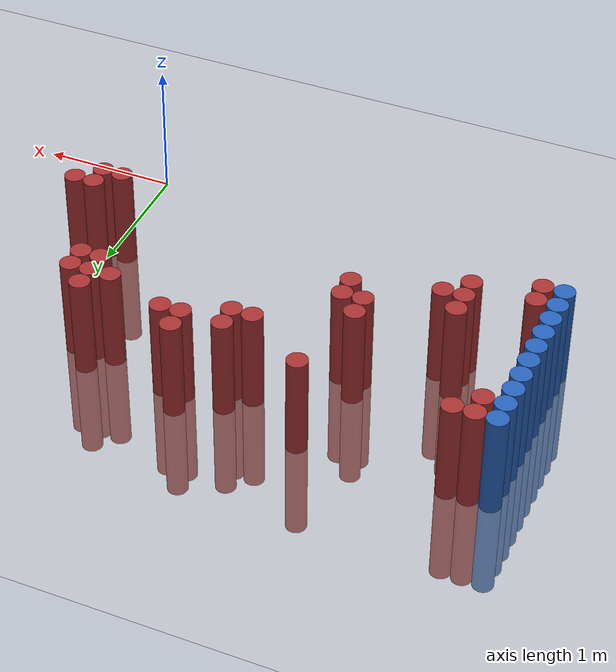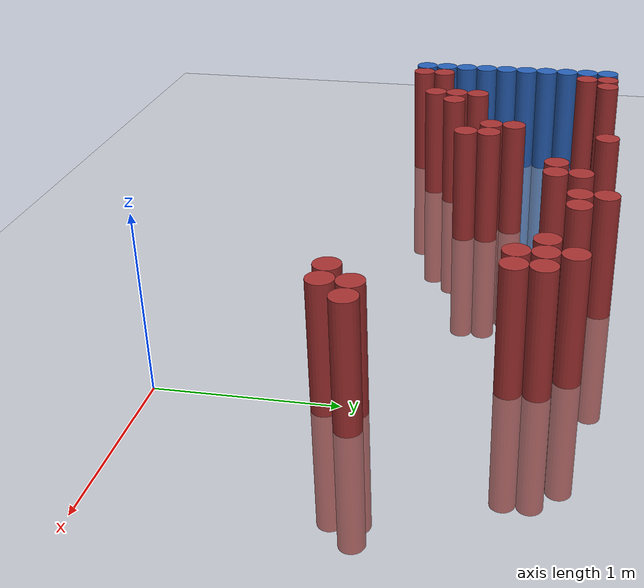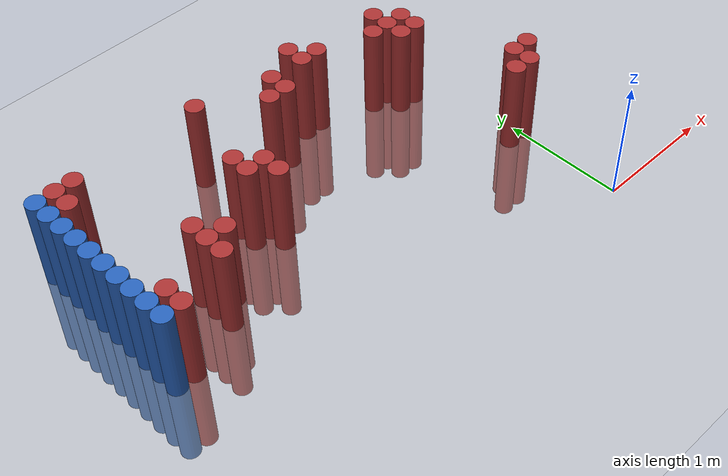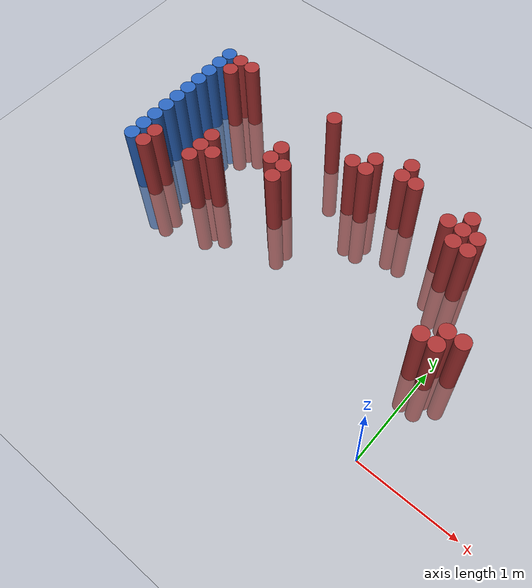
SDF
<sdf version="1.6">
 <world name="default">
  <model name="ground_plane">
   <static>1</static>
   <link name="link">
    <collision name="collision">
     <geometry><plane><normal>0 0 1</normal><size>100 100</size></plane></geometry>
     <surface><friction><ode><mu>100</mu><mu2>50</mu2></ode></friction></surface>
    </collision>
    <visual name="visual">
     <cast_shadows>0</cast_shadows>
     <geometry><plane><normal>0 0 1</normal><size>100 100</size></plane></geometry>
     <material>
      <script><uri>file://media/materials/scripts/gazebo.material</uri><name>Gazebo/Grey</name></script>
     </material>
    </visual>
   </link>
  </model>
  <model name="unit_cylinder_127">
   <static>1</static>
   <pose>-3.425000 0.925000 0.000000 0.000000 0.000000 0.000000</pose>
   <link name="link">
    <inertial>
     <mass>1</mass>
     <inertia><ixx>0.145833</ixx><ixy>0</ixy><ixz>0</ixz><iyy>0.145833</iyy><iyz>0</iyz><izz>0.125</izz></inertia>
    </inertial>
    <collision name="collision">
     <geometry><cylinder><radius>0.075000</radius><length>1.5</length></cylinder></geometry>
    </collision>
    <visual name="visual">
     <geometry><cylinder><radius>0.075000</radius><length>1.5</length></cylinder></geometry>
     <material>
      <ambient>0.152000 0.379000 0.720000 1</ambient>
      <diffuse>0.152000 0.379000 0.720000 1</diffuse>
     </material>
     <material>
      <script><name>Gazebo/Grey</name><uri>file://media/materials/scripts/gazebo.material</uri></script>
     </material>
    </visual>
   </link>
  </model>
  <model name="unit_cylinder_129">
   <static>1</static>
   <pose>-3.425000 1.075000 0.000000 0.000000 0.000000 0.000000</pose>
   <link name="link">
    <inertial>
     <mass>1</mass>
     <inertia><ixx>0.145833</ixx><ixy>0</ixy><ixz>0</ixz><iyy>0.145833</iyy><iyz>0</iyz><izz>0.125</izz></inertia>
    </inertial>
    <collision name="collision">
     <geometry><cylinder><radius>0.075000</radius><length>1.5</length></cylinder></geometry>
    </collision>
    <visual name="visual">
     <geometry><cylinder><radius>0.075000</radius><length>1.5</length></cylinder></geometry>
     <material>
      <ambient>0.152000 0.379000 0.720000 1</ambient>
      <diffuse>0.152000 0.379000 0.720000 1</diffuse>
     </material>
     <material>
      <script><name>Gazebo/Grey</name><uri>file://media/materials/scripts/gazebo.material</uri></script>
     </material>
    </visual>
   </link>
  </model>
  <model name="unit_cylinder_131">
   <static>1</static>
   <pose>-3.425000 1.225000 0.000000 0.000000 0.000000 0.000000</pose>
   <link name="link">
    <inertial>
     <mass>1</mass>
     <inertia><ixx>0.145833</ixx><ixy>0</ixy><ixz>0</ixz><iyy>0.145833</iyy><iyz>0</iyz><izz>0.125</izz></inertia>
    </inertial>
    <collision name="collision">
     <geometry><cylinder><radius>0.075000</radius><length>1.5</length></cylinder></geometry>
    </collision>
    <visual name="visual">
     <geometry><cylinder><radius>0.075000</radius><length>1.5</length></cylinder></geometry>
     <material>
      <ambient>0.152000 0.379000 0.720000 1</ambient>
      <diffuse>0.152000 0.379000 0.720000 1</diffuse>
     </material>
     <material>
      <script><name>Gazebo/Grey</name><uri>file://media/materials/scripts/gazebo.material</uri></script>
     </material>
    </visual>
   </link>
  </model>
  <model name="unit_cylinder_133">
   <static>1</static>
   <pose>-3.425000 1.375000 0.000000 0.000000 0.000000 0.000000</pose>
   <link name="link">
    <inertial>
     <mass>1</mass>
     <inertia><ixx>0.145833</ixx><ixy>0</ixy><ixz>0</ixz><iyy>0.145833</iyy><iyz>0</iyz><izz>0.125</izz></inertia>
    </inertial>
    <collision name="collision">
     <geometry><cylinder><radius>0.075000</radius><length>1.5</length></cylinder></geometry>
    </collision>
    <visual name="visual">
     <geometry><cylinder><radius>0.075000</radius><length>1.5</length></cylinder></geometry>
     <material>
      <ambient>0.152000 0.379000 0.720000 1</ambient>
      <diffuse>0.152000 0.379000 0.720000 1</diffuse>
     </material>
     <material>
      <script><name>Gazebo/Grey</name><uri>file://media/materials/scripts/gazebo.material</uri></script>
     </material>
    </visual>
   </link>
  </model>
  <model name="unit_cylinder_135">
   <static>1</static>
   <pose>-3.425000 1.525000 0.000000 0.000000 0.000000 0.000000</pose>
   <link name="link">
    <inertial>
     <mass>1</mass>
     <inertia><ixx>0.145833</ixx><ixy>0</ixy><ixz>0</ixz><iyy>0.145833</iyy><iyz>0</iyz><izz>0.125</izz></inertia>
    </inertial>
    <collision name="collision">
     <geometry><cylinder><radius>0.075000</radius><length>1.5</length></cylinder></geometry>
    </collision>
    <visual name="visual">
     <geometry><cylinder><radius>0.075000</radius><length>1.5</length></cylinder></geometry>
     <material>
      <ambient>0.152000 0.379000 0.720000 1</ambient>
      <diffuse>0.152000 0.379000 0.720000 1</diffuse>
     </material>
     <material>
      <script><name>Gazebo/Grey</name><uri>file://media/materials/scripts/gazebo.material</uri></script>
     </material>
    </visual>
   </link>
  </model>
  <model name="unit_cylinder_137">
   <static>1</static>
   <pose>-3.425000 1.675000 0.000000 0.000000 0.000000 0.000000</pose>
   <link name="link">
    <inertial>
     <mass>1</mass>
     <inertia><ixx>0.145833</ixx><ixy>0</ixy><ixz>0</ixz><iyy>0.145833</iyy><iyz>0</iyz><izz>0.125</izz></inertia>
    </inertial>
    <collision name="collision">
     <geometry><cylinder><radius>0.075000</radius><length>1.5</length></cylinder></geometry>
    </collision>
    <visual name="visual">
     <geometry><cylinder><radius>0.075000</radius><length>1.5</length></cylinder></geometry>
     <material>
      <ambient>0.152000 0.379000 0.720000 1</ambient>
      <diffuse>0.152000 0.379000 0.720000 1</diffuse>
     </material>
     <material>
      <script><name>Gazebo/Grey</name><uri>file://media/materials/scripts/gazebo.material</uri></script>
     </material>
    </visual>
   </link>
  </model>
  <model name="unit_cylinder_139">
   <static>1</static>
   <pose>-3.425000 1.825000 0.000000 0.000000 0.000000 0.000000</pose>
   <link name="link">
    <inertial>
     <mass>1</mass>
     <inertia><ixx>0.145833</ixx><ixy>0</ixy><ixz>0</ixz><iyy>0.145833</iyy><iyz>0</iyz><izz>0.125</izz></inertia>
    </inertial>
    <collision name="collision">
     <geometry><cylinder><radius>0.075000</radius><length>1.5</length></cylinder></geometry>
    </collision>
    <visual name="visual">
     <geometry><cylinder><radius>0.075000</radius><length>1.5</length></cylinder></geometry>
     <material>
      <ambient>0.152000 0.379000 0.720000 1</ambient>
      <diffuse>0.152000 0.379000 0.720000 1</diffuse>
     </material>
     <material>
      <script><name>Gazebo/Grey</name><uri>file://media/materials/scripts/gazebo.material</uri></script>
     </material>
    </visual>
   </link>
  </model>
  <model name="unit_cylinder_141">
   <static>1</static>
   <pose>-3.425000 1.975000 0.000000 0.000000 0.000000 0.000000</pose>
   <link name="link">
    <inertial>
     <mass>1</mass>
     <inertia><ixx>0.145833</ixx><ixy>0</ixy><ixz>0</ixz><iyy>0.145833</iyy><iyz>0</iyz><izz>0.125</izz></inertia>
    </inertial>
    <collision name="collision">
     <geometry><cylinder><radius>0.075000</radius><length>1.5</length></cylinder></geometry>
    </collision>
    <visual name="visual">
     <geometry><cylinder><radius>0.075000</radius><length>1.5</length></cylinder></geometry>
     <material>
      <ambient>0.152000 0.379000 0.720000 1</ambient>
      <diffuse>0.152000 0.379000 0.720000 1</diffuse>
     </material>
     <material>
      <script><name>Gazebo/Grey</name><uri>file://media/materials/scripts/gazebo.material</uri></script>
     </material>
    </visual>
   </link>
  </model>
  <model name="unit_cylinder_143">
   <static>1</static>
   <pose>-3.425000 2.125000 0.000000 0.000000 0.000000 0.000000</pose>
   <link name="link">
    <inertial>
     <mass>1</mass>
     <inertia><ixx>0.145833</ixx><ixy>0</ixy><ixz>0</ixz><iyy>0.145833</iyy><iyz>0</iyz><izz>0.125</izz></inertia>
    </inertial>
    <collision name="collision">
     <geometry><cylinder><radius>0.075000</radius><length>1.5</length></cylinder></geometry>
    </collision>
    <visual name="visual">
     <geometry><cylinder><radius>0.075000</radius><length>1.5</length></cylinder></geometry>
     <material>
      <ambient>0.152000 0.379000 0.720000 1</ambient>
      <diffuse>0.152000 0.379000 0.720000 1</diffuse>
     </material>
     <material>
      <script><name>Gazebo/Grey</name><uri>file://media/materials/scripts/gazebo.material</uri></script>
     </material>
    </visual>
   </link>
  </model>
  <model name="unit_cylinder_145">
   <static>1</static>
   <pose>-3.425000 2.275000 0.000000 0.000000 0.000000 0.000000</pose>
   <link name="link">
    <inertial>
     <mass>1</mass>
     <inertia><ixx>0.145833</ixx><ixy>0</ixy><ixz>0</ixz><iyy>0.145833</iyy><iyz>0</iyz><izz>0.125</izz></inertia>
    </inertial>
    <collision name="collision">
     <geometry><cylinder><radius>0.075000</radius><length>1.5</length></cylinder></geometry>
    </collision>
    <visual name="visual">
     <geometry><cylinder><radius>0.075000</radius><length>1.5</length></cylinder></geometry>
     <material>
      <ambient>0.152000 0.379000 0.720000 1</ambient>
      <diffuse>0.152000 0.379000 0.720000 1</diffuse>
     </material>
     <material>
      <script><name>Gazebo/Grey</name><uri>file://media/materials/scripts/gazebo.material</uri></script>
     </material>
    </visual>
   </link>
  </model>
  <model name="unit_cylinder_227">
   <static>1</static>
   <pose>-3.425000 0.925000 0.000000 0.000000 0.000000 0.000000</pose>
   <link name="link">
    <inertial>
     <mass>1</mass>
     <inertia><ixx>0.145833</ixx><ixy>0</ixy><ixz>0</ixz><iyy>0.145833</iyy><iyz>0</iyz><izz>0.125</izz></inertia>
    </inertial>
    <collision name="collision">
     <geometry><cylinder><radius>0.075000</radius><length>1.5</length></cylinder></geometry>
    </collision>
    <visual name="visual">
     <geometry><cylinder><radius>0.075000</radius><length>1.5</length></cylinder></geometry>
     <material>
      <ambient>0.152000 0.379000 0.720000 1</ambient>
      <diffuse>0.152000 0.379000 0.720000 1</diffuse>
     </material>
     <material>
      <script><name>Gazebo/Grey</name><uri>file://media/materials/scripts/gazebo.material</uri></script>
     </material>
    </visual>
   </link>
  </model>
  <model name="unit_cylinder_228">
   <static>1</static>
   <pose>-3.425000 1.075000 0.000000 0.000000 0.000000 0.000000</pose>
   <link name="link">
    <inertial>
     <mass>1</mass>
     <inertia><ixx>0.145833</ixx><ixy>0</ixy><ixz>0</ixz><iyy>0.145833</iyy><iyz>0</iyz><izz>0.125</izz></inertia>
    </inertial>
    <collision name="collision">
     <geometry><cylinder><radius>0.075000</radius><length>1.5</length></cylinder></geometry>
    </collision>
    <visual name="visual">
     <geometry><cylinder><radius>0.075000</radius><length>1.5</length></cylinder></geometry>
     <material>
      <ambient>0.152000 0.379000 0.720000 1</ambient>
      <diffuse>0.152000 0.379000 0.720000 1</diffuse>
     </material>
     <material>
      <script><name>Gazebo/Grey</name><uri>file://media/materials/scripts/gazebo.material</uri></script>
     </material>
    </visual>
   </link>
  </model>
  <model name="unit_cylinder_229">
   <static>1</static>
   <pose>-3.425000 1.225000 0.000000 0.000000 0.000000 0.000000</pose>
   <link name="link">
    <inertial>
     <mass>1</mass>
     <inertia><ixx>0.145833</ixx><ixy>0</ixy><ixz>0</ixz><iyy>0.145833</iyy><iyz>0</iyz><izz>0.125</izz></inertia>
    </inertial>
    <collision name="collision">
     <geometry><cylinder><radius>0.075000</radius><length>1.5</length></cylinder></geometry>
    </collision>
    <visual name="visual">
     <geometry><cylinder><radius>0.075000</radius><length>1.5</length></cylinder></geometry>
     <material>
      <ambient>0.152000 0.379000 0.720000 1</ambient>
      <diffuse>0.152000 0.379000 0.720000 1</diffuse>
     </material>
     <material>
      <script><name>Gazebo/Grey</name><uri>file://media/materials/scripts/gazebo.material</uri></script>
     </material>
    </visual>
   </link>
  </model>
  <model name="unit_cylinder_230">
   <static>1</static>
   <pose>-3.425000 1.375000 0.000000 0.000000 0.000000 0.000000</pose>
   <link name="link">
    <inertial>
     <mass>1</mass>
     <inertia><ixx>0.145833</ixx><ixy>0</ixy><ixz>0</ixz><iyy>0.145833</iyy><iyz>0</iyz><izz>0.125</izz></inertia>
    </inertial>
    <collision name="collision">
     <geometry><cylinder><radius>0.075000</radius><length>1.5</length></cylinder></geometry>
    </collision>
    <visual name="visual">
     <geometry><cylinder><radius>0.075000</radius><length>1.5</length></cylinder></geometry>
     <material>
      <ambient>0.152000 0.379000 0.720000 1</ambient>
      <diffuse>0.152000 0.379000 0.720000 1</diffuse>
     </material>
     <material>
      <script><name>Gazebo/Grey</name><uri>file://media/materials/scripts/gazebo.material</uri></script>
     </material>
    </visual>
   </link>
  </model>
  <model name="unit_cylinder_231">
   <static>1</static>
   <pose>-3.425000 1.525000 0.000000 0.000000 0.000000 0.000000</pose>
   <link name="link">
    <inertial>
     <mass>1</mass>
     <inertia><ixx>0.145833</ixx><ixy>0</ixy><ixz>0</ixz><iyy>0.145833</iyy><iyz>0</iyz><izz>0.125</izz></inertia>
    </inertial>
    <collision name="collision">
     <geometry><cylinder><radius>0.075000</radius><length>1.5</length></cylinder></geometry>
    </collision>
    <visual name="visual">
     <geometry><cylinder><radius>0.075000</radius><length>1.5</length></cylinder></geometry>
     <material>
      <ambient>0.152000 0.379000 0.720000 1</ambient>
      <diffuse>0.152000 0.379000 0.720000 1</diffuse>
     </material>
     <material>
      <script><name>Gazebo/Grey</name><uri>file://media/materials/scripts/gazebo.material</uri></script>
     </material>
    </visual>
   </link>
  </model>
  <model name="unit_cylinder_232">
   <static>1</static>
   <pose>-3.425000 1.675000 0.000000 0.000000 0.000000 0.000000</pose>
   <link name="link">
    <inertial>
     <mass>1</mass>
     <inertia><ixx>0.145833</ixx><ixy>0</ixy><ixz>0</ixz><iyy>0.145833</iyy><iyz>0</iyz><izz>0.125</izz></inertia>
    </inertial>
    <collision name="collision">
     <geometry><cylinder><radius>0.075000</radius><length>1.5</length></cylinder></geometry>
    </collision>
    <visual name="visual">
     <geometry><cylinder><radius>0.075000</radius><length>1.5</length></cylinder></geometry>
     <material>
      <ambient>0.152000 0.379000 0.720000 1</ambient>
      <diffuse>0.152000 0.379000 0.720000 1</diffuse>
     </material>
     <material>
      <script><name>Gazebo/Grey</name><uri>file://media/materials/scripts/gazebo.material</uri></script>
     </material>
    </visual>
   </link>
  </model>
  <model name="unit_cylinder_233">
   <static>1</static>
   <pose>-3.425000 1.825000 0.000000 0.000000 0.000000 0.000000</pose>
   <link name="link">
    <inertial>
     <mass>1</mass>
     <inertia><ixx>0.145833</ixx><ixy>0</ixy><ixz>0</ixz><iyy>0.145833</iyy><iyz>0</iyz><izz>0.125</izz></inertia>
    </inertial>
    <collision name="collision">
     <geometry><cylinder><radius>0.075000</radius><length>1.5</length></cylinder></geometry>
    </collision>
    <visual name="visual">
     <geometry><cylinder><radius>0.075000</radius><length>1.5</length></cylinder></geometry>
     <material>
      <ambient>0.152000 0.379000 0.720000 1</ambient>
      <diffuse>0.152000 0.379000 0.720000 1</diffuse>
     </material>
     <material>
      <script><name>Gazebo/Grey</name><uri>file://media/materials/scripts/gazebo.material</uri></script>
     </material>
    </visual>
   </link>
  </model>
  <model name="unit_cylinder_234">
   <static>1</static>
   <pose>-3.425000 1.975000 0.000000 0.000000 0.000000 0.000000</pose>
   <link name="link">
    <inertial>
     <mass>1</mass>
     <inertia><ixx>0.145833</ixx><ixy>0</ixy><ixz>0</ixz><iyy>0.145833</iyy><iyz>0</iyz><izz>0.125</izz></inertia>
    </inertial>
    <collision name="collision">
     <geometry><cylinder><radius>0.075000</radius><length>1.5</length></cylinder></geometry>
    </collision>
    <visual name="visual">
     <geometry><cylinder><radius>0.075000</radius><length>1.5</length></cylinder></geometry>
     <material>
      <ambient>0.152000 0.379000 0.720000 1</ambient>
      <diffuse>0.152000 0.379000 0.720000 1</diffuse>
     </material>
     <material>
      <script><name>Gazebo/Grey</name><uri>file://media/materials/scripts/gazebo.material</uri></script>
     </material>
    </visual>
   </link>
  </model>
  <model name="unit_cylinder_235">
   <static>1</static>
   <pose>-3.425000 2.125000 0.000000 0.000000 0.000000 0.000000</pose>
   <link name="link">
    <inertial>
     <mass>1</mass>
     <inertia><ixx>0.145833</ixx><ixy>0</ixy><ixz>0</ixz><iyy>0.145833</iyy><iyz>0</iyz><izz>0.125</izz></inertia>
    </inertial>
    <collision name="collision">
     <geometry><cylinder><radius>0.075000</radius><length>1.5</length></cylinder></geometry>
    </collision>
    <visual name="visual">
     <geometry><cylinder><radius>0.075000</radius><length>1.5</length></cylinder></geometry>
     <material>
      <ambient>0.152000 0.379000 0.720000 1</ambient>
      <diffuse>0.152000 0.379000 0.720000 1</diffuse>
     </material>
     <material>
      <script><name>Gazebo/Grey</name><uri>file://media/materials/scripts/gazebo.material</uri></script>
     </material>
    </visual>
   </link>
  </model>
  <model name="unit_cylinder_236">
   <static>1</static>
   <pose>-3.425000 2.275000 0.000000 0.000000 0.000000 0.000000</pose>
   <link name="link">
    <inertial>
     <mass>1</mass>
     <inertia><ixx>0.145833</ixx><ixy>0</ixy><ixz>0</ixz><iyy>0.145833</iyy><iyz>0</iyz><izz>0.125</izz></inertia>
    </inertial>
    <collision name="collision">
     <geometry><cylinder><radius>0.075000</radius><length>1.5</length></cylinder></geometry>
    </collision>
    <visual name="visual">
     <geometry><cylinder><radius>0.075000</radius><length>1.5</length></cylinder></geometry>
     <material>
      <ambient>0.152000 0.379000 0.720000 1</ambient>
      <diffuse>0.152000 0.379000 0.720000 1</diffuse>
     </material>
     <material>
      <script><name>Gazebo/Grey</name><uri>file://media/materials/scripts/gazebo.material</uri></script>
     </material>
    </visual>
   </link>
  </model>
  <model name="unit_cylinder_271">
   <static>1</static>
   <pose>-3.275000 0.925000 0.000000 0.000000 0.000000 0.000000</pose>
   <link name="link">
    <inertial>
     <mass>1</mass>
     <inertia><ixx>0.145833</ixx><ixy>0</ixy><ixz>0</ixz><iyy>0.145833</iyy><iyz>0</iyz><izz>0.125</izz></inertia>
    </inertial>
    <collision name="collision">
     <geometry><cylinder><radius>0.075000</radius><length>1.5</length></cylinder></geometry>
    </collision>
    <visual name="visual">
     <geometry><cylinder><radius>0.075000</radius><length>1.5</length></cylinder></geometry>
     <material>
      <ambient>0.648000 0.192000 0.192000 1</ambient>
      <diffuse>0.648000 0.192000 0.192000 1</diffuse>
     </material>
     <material>
      <script><name>Gazebo/Grey</name><uri>file://media/materials/scripts/gazebo.material</uri></script>
     </material>
    </visual>
   </link>
  </model>
  <model name="unit_cylinder_272">
   <static>1</static>
   <pose>-3.275000 1.075000 0.000000 0.000000 0.000000 0.000000</pose>
   <link name="link">
    <inertial>
     <mass>1</mass>
     <inertia><ixx>0.145833</ixx><ixy>0</ixy><ixz>0</ixz><iyy>0.145833</iyy><iyz>0</iyz><izz>0.125</izz></inertia>
    </inertial>
    <collision name="collision">
     <geometry><cylinder><radius>0.075000</radius><length>1.5</length></cylinder></geometry>
    </collision>
    <visual name="visual">
     <geometry><cylinder><radius>0.075000</radius><length>1.5</length></cylinder></geometry>
     <material>
      <ambient>0.648000 0.192000 0.192000 1</ambient>
      <diffuse>0.648000 0.192000 0.192000 1</diffuse>
     </material>
     <material>
      <script><name>Gazebo/Grey</name><uri>file://media/materials/scripts/gazebo.material</uri></script>
     </material>
    </visual>
   </link>
  </model>
  <model name="unit_cylinder_273">
   <static>1</static>
   <pose>-3.275000 2.125000 0.000000 0.000000 0.000000 0.000000</pose>
   <link name="link">
    <inertial>
     <mass>1</mass>
     <inertia><ixx>0.145833</ixx><ixy>0</ixy><ixz>0</ixz><iyy>0.145833</iyy><iyz>0</iyz><izz>0.125</izz></inertia>
    </inertial>
    <collision name="collision">
     <geometry><cylinder><radius>0.075000</radius><length>1.5</length></cylinder></geometry>
    </collision>
    <visual name="visual">
     <geometry><cylinder><radius>0.075000</radius><length>1.5</length></cylinder></geometry>
     <material>
      <ambient>0.648000 0.192000 0.192000 1</ambient>
      <diffuse>0.648000 0.192000 0.192000 1</diffuse>
     </material>
     <material>
      <script><name>Gazebo/Grey</name><uri>file://media/materials/scripts/gazebo.material</uri></script>
     </material>
    </visual>
   </link>
  </model>
  <model name="unit_cylinder_274">
   <static>1</static>
   <pose>-3.275000 2.275000 0.000000 0.000000 0.000000 0.000000</pose>
   <link name="link">
    <inertial>
     <mass>1</mass>
     <inertia><ixx>0.145833</ixx><ixy>0</ixy><ixz>0</ixz><iyy>0.145833</iyy><iyz>0</iyz><izz>0.125</izz></inertia>
    </inertial>
    <collision name="collision">
     <geometry><cylinder><radius>0.075000</radius><length>1.5</length></cylinder></geometry>
    </collision>
    <visual name="visual">
     <geometry><cylinder><radius>0.075000</radius><length>1.5</length></cylinder></geometry>
     <material>
      <ambient>0.648000 0.192000 0.192000 1</ambient>
      <diffuse>0.648000 0.192000 0.192000 1</diffuse>
     </material>
     <material>
      <script><name>Gazebo/Grey</name><uri>file://media/materials/scripts/gazebo.material</uri></script>
     </material>
    </visual>
   </link>
  </model>
  <model name="unit_cylinder_286">
   <static>1</static>
   <pose>-3.125000 2.275000 0.000000 0.000000 0.000000 0.000000</pose>
   <link name="link">
    <inertial>
     <mass>1</mass>
     <inertia><ixx>0.145833</ixx><ixy>0</ixy><ixz>0</ixz><iyy>0.145833</iyy><iyz>0</iyz><izz>0.125</izz></inertia>
    </inertial>
    <collision name="collision">
     <geometry><cylinder><radius>0.075000</radius><length>1.5</length></cylinder></geometry>
    </collision>
    <visual name="visual">
     <geometry><cylinder><radius>0.075000</radius><length>1.5</length></cylinder></geometry>
     <material>
      <ambient>0.648000 0.192000 0.192000 1</ambient>
      <diffuse>0.648000 0.192000 0.192000 1</diffuse>
     </material>
     <material>
      <script><name>Gazebo/Grey</name><uri>file://media/materials/scripts/gazebo.material</uri></script>
     </material>
    </visual>
   </link>
  </model>
  <model name="unit_cylinder_302">
   <static>1</static>
   <pose>-2.825000 1.075000 0.000000 0.000000 0.000000 0.000000</pose>
   <link name="link">
    <inertial>
     <mass>1</mass>
     <inertia><ixx>0.145833</ixx><ixy>0</ixy><ixz>0</ixz><iyy>0.145833</iyy><iyz>0</iyz><izz>0.125</izz></inertia>
    </inertial>
    <collision name="collision">
     <geometry><cylinder><radius>0.075000</radius><length>1.5</length></cylinder></geometry>
    </collision>
    <visual name="visual">
     <geometry><cylinder><radius>0.075000</radius><length>1.5</length></cylinder></geometry>
     <material>
      <ambient>0.648000 0.192000 0.192000 1</ambient>
      <diffuse>0.648000 0.192000 0.192000 1</diffuse>
     </material>
     <material>
      <script><name>Gazebo/Grey</name><uri>file://media/materials/scripts/gazebo.material</uri></script>
     </material>
    </visual>
   </link>
  </model>
  <model name="unit_cylinder_303">
   <static>1</static>
   <pose>-2.825000 1.225000 0.000000 0.000000 0.000000 0.000000</pose>
   <link name="link">
    <inertial>
     <mass>1</mass>
     <inertia><ixx>0.145833</ixx><ixy>0</ixy><ixz>0</ixz><iyy>0.145833</iyy><iyz>0</iyz><izz>0.125</izz></inertia>
    </inertial>
    <collision name="collision">
     <geometry><cylinder><radius>0.075000</radius><length>1.5</length></cylinder></geometry>
    </collision>
    <visual name="visual">
     <geometry><cylinder><radius>0.075000</radius><length>1.5</length></cylinder></geometry>
     <material>
      <ambient>0.648000 0.192000 0.192000 1</ambient>
      <diffuse>0.648000 0.192000 0.192000 1</diffuse>
     </material>
     <material>
      <script><name>Gazebo/Grey</name><uri>file://media/materials/scripts/gazebo.material</uri></script>
     </material>
    </visual>
   </link>
  </model>
  <model name="unit_cylinder_304">
   <static>1</static>
   <pose>-2.825000 1.375000 0.000000 0.000000 0.000000 0.000000</pose>
   <link name="link">
    <inertial>
     <mass>1</mass>
     <inertia><ixx>0.145833</ixx><ixy>0</ixy><ixz>0</ixz><iyy>0.145833</iyy><iyz>0</iyz><izz>0.125</izz></inertia>
    </inertial>
    <collision name="collision">
     <geometry><cylinder><radius>0.075000</radius><length>1.5</length></cylinder></geometry>
    </collision>
    <visual name="visual">
     <geometry><cylinder><radius>0.075000</radius><length>1.5</length></cylinder></geometry>
     <material>
      <ambient>0.648000 0.192000 0.192000 1</ambient>
      <diffuse>0.648000 0.192000 0.192000 1</diffuse>
     </material>
     <material>
      <script><name>Gazebo/Grey</name><uri>file://media/materials/scripts/gazebo.material</uri></script>
     </material>
    </visual>
   </link>
  </model>
  <model name="unit_cylinder_306">
   <static>1</static>
   <pose>-2.675000 1.225000 0.000000 0.000000 0.000000 0.000000</pose>
   <link name="link">
    <inertial>
     <mass>1</mass>
     <inertia><ixx>0.145833</ixx><ixy>0</ixy><ixz>0</ixz><iyy>0.145833</iyy><iyz>0</iyz><izz>0.125</izz></inertia>
    </inertial>
    <collision name="collision">
     <geometry><cylinder><radius>0.075000</radius><length>1.5</length></cylinder></geometry>
    </collision>
    <visual name="visual">
     <geometry><cylinder><radius>0.075000</radius><length>1.5</length></cylinder></geometry>
     <material>
      <ambient>0.648000 0.192000 0.192000 1</ambient>
      <diffuse>0.648000 0.192000 0.192000 1</diffuse>
     </material>
     <material>
      <script><name>Gazebo/Grey</name><uri>file://media/materials/scripts/gazebo.material</uri></script>
     </material>
    </visual>
   </link>
  </model>
  <model name="unit_cylinder_325">
   <static>1</static>
   <pose>-2.225000 1.525000 0.000000 0.000000 0.000000 0.000000</pose>
   <link name="link">
    <inertial>
     <mass>1</mass>
     <inertia><ixx>0.145833</ixx><ixy>0</ixy><ixz>0</ixz><iyy>0.145833</iyy><iyz>0</iyz><izz>0.125</izz></inertia>
    </inertial>
    <collision name="collision">
     <geometry><cylinder><radius>0.075000</radius><length>1.5</length></cylinder></geometry>
    </collision>
    <visual name="visual">
     <geometry><cylinder><radius>0.075000</radius><length>1.5</length></cylinder></geometry>
     <material>
      <ambient>0.648000 0.192000 0.192000 1</ambient>
      <diffuse>0.648000 0.192000 0.192000 1</diffuse>
     </material>
     <material>
      <script><name>Gazebo/Grey</name><uri>file://media/materials/scripts/gazebo.material</uri></script>
     </material>
    </visual>
   </link>
  </model>
  <model name="unit_cylinder_326">
   <static>1</static>
   <pose>-2.225000 1.675000 0.000000 0.000000 0.000000 0.000000</pose>
   <link name="link">
    <inertial>
     <mass>1</mass>
     <inertia><ixx>0.145833</ixx><ixy>0</ixy><ixz>0</ixz><iyy>0.145833</iyy><iyz>0</iyz><izz>0.125</izz></inertia>
    </inertial>
    <collision name="collision">
     <geometry><cylinder><radius>0.075000</radius><length>1.5</length></cylinder></geometry>
    </collision>
    <visual name="visual">
     <geometry><cylinder><radius>0.075000</radius><length>1.5</length></cylinder></geometry>
     <material>
      <ambient>0.648000 0.192000 0.192000 1</ambient>
      <diffuse>0.648000 0.192000 0.192000 1</diffuse>
     </material>
     <material>
      <script><name>Gazebo/Grey</name><uri>file://media/materials/scripts/gazebo.material</uri></script>
     </material>
    </visual>
   </link>
  </model>
  <model name="unit_cylinder_331">
   <static>1</static>
   <pose>-2.075000 1.375000 0.000000 0.000000 0.000000 0.000000</pose>
   <link name="link">
    <inertial>
     <mass>1</mass>
     <inertia><ixx>0.145833</ixx><ixy>0</ixy><ixz>0</ixz><iyy>0.145833</iyy><iyz>0</iyz><izz>0.125</izz></inertia>
    </inertial>
    <collision name="collision">
     <geometry><cylinder><radius>0.075000</radius><length>1.5</length></cylinder></geometry>
    </collision>
    <visual name="visual">
     <geometry><cylinder><radius>0.075000</radius><length>1.5</length></cylinder></geometry>
     <material>
      <ambient>0.648000 0.192000 0.192000 1</ambient>
      <diffuse>0.648000 0.192000 0.192000 1</diffuse>
     </material>
     <material>
      <script><name>Gazebo/Grey</name><uri>file://media/materials/scripts/gazebo.material</uri></script>
     </material>
    </visual>
   </link>
  </model>
  <model name="unit_cylinder_332">
   <static>1</static>
   <pose>-2.075000 1.525000 0.000000 0.000000 0.000000 0.000000</pose>
   <link name="link">
    <inertial>
     <mass>1</mass>
     <inertia><ixx>0.145833</ixx><ixy>0</ixy><ixz>0</ixz><iyy>0.145833</iyy><iyz>0</iyz><izz>0.125</izz></inertia>
    </inertial>
    <collision name="collision">
     <geometry><cylinder><radius>0.075000</radius><length>1.5</length></cylinder></geometry>
    </collision>
    <visual name="visual">
     <geometry><cylinder><radius>0.075000</radius><length>1.5</length></cylinder></geometry>
     <material>
      <ambient>0.648000 0.192000 0.192000 1</ambient>
      <diffuse>0.648000 0.192000 0.192000 1</diffuse>
     </material>
     <material>
      <script><name>Gazebo/Grey</name><uri>file://media/materials/scripts/gazebo.material</uri></script>
     </material>
    </visual>
   </link>
  </model>
  <model name="unit_cylinder_333">
   <static>1</static>
   <pose>-2.075000 2.275000 0.000000 0.000000 0.000000 0.000000</pose>
   <link name="link">
    <inertial>
     <mass>1</mass>
     <inertia><ixx>0.145833</ixx><ixy>0</ixy><ixz>0</ixz><iyy>0.145833</iyy><iyz>0</iyz><izz>0.125</izz></inertia>
    </inertial>
    <collision name="collision">
     <geometry><cylinder><radius>0.075000</radius><length>1.5</length></cylinder></geometry>
    </collision>
    <visual name="visual">
     <geometry><cylinder><radius>0.075000</radius><length>1.5</length></cylinder></geometry>
     <material>
      <ambient>0.648000 0.192000 0.192000 1</ambient>
      <diffuse>0.648000 0.192000 0.192000 1</diffuse>
     </material>
     <material>
      <script><name>Gazebo/Grey</name><uri>file://media/materials/scripts/gazebo.material</uri></script>
     </material>
    </visual>
   </link>
  </model>
  <model name="unit_cylinder_352">
   <static>1</static>
   <pose>-1.625000 1.975000 0.000000 0.000000 0.000000 0.000000</pose>
   <link name="link">
    <inertial>
     <mass>1</mass>
     <inertia><ixx>0.145833</ixx><ixy>0</ixy><ixz>0</ixz><iyy>0.145833</iyy><iyz>0</iyz><izz>0.125</izz></inertia>
    </inertial>
    <collision name="collision">
     <geometry><cylinder><radius>0.075000</radius><length>1.5</length></cylinder></geometry>
    </collision>
    <visual name="visual">
     <geometry><cylinder><radius>0.075000</radius><length>1.5</length></cylinder></geometry>
     <material>
      <ambient>0.648000 0.192000 0.192000 1</ambient>
      <diffuse>0.648000 0.192000 0.192000 1</diffuse>
     </material>
     <material>
      <script><name>Gazebo/Grey</name><uri>file://media/materials/scripts/gazebo.material</uri></script>
     </material>
    </visual>
   </link>
  </model>
  <model name="unit_cylinder_360">
   <static>1</static>
   <pose>-1.475000 1.975000 0.000000 0.000000 0.000000 0.000000</pose>
   <link name="link">
    <inertial>
     <mass>1</mass>
     <inertia><ixx>0.145833</ixx><ixy>0</ixy><ixz>0</ixz><iyy>0.145833</iyy><iyz>0</iyz><izz>0.125</izz></inertia>
    </inertial>
    <collision name="collision">
     <geometry><cylinder><radius>0.075000</radius><length>1.5</length></cylinder></geometry>
    </collision>
    <visual name="visual">
     <geometry><cylinder><radius>0.075000</radius><length>1.5</length></cylinder></geometry>
     <material>
      <ambient>0.648000 0.192000 0.192000 1</ambient>
      <diffuse>0.648000 0.192000 0.192000 1</diffuse>
     </material>
     <material>
      <script><name>Gazebo/Grey</name><uri>file://media/materials/scripts/gazebo.material</uri></script>
     </material>
    </visual>
   </link>
  </model>
  <model name="unit_cylinder_361">
   <static>1</static>
   <pose>-1.475000 2.125000 0.000000 0.000000 0.000000 0.000000</pose>
   <link name="link">
    <inertial>
     <mass>1</mass>
     <inertia><ixx>0.145833</ixx><ixy>0</ixy><ixz>0</ixz><iyy>0.145833</iyy><iyz>0</iyz><izz>0.125</izz></inertia>
    </inertial>
    <collision name="collision">
     <geometry><cylinder><radius>0.075000</radius><length>1.5</length></cylinder></geometry>
    </collision>
    <visual name="visual">
     <geometry><cylinder><radius>0.075000</radius><length>1.5</length></cylinder></geometry>
     <material>
      <ambient>0.648000 0.192000 0.192000 1</ambient>
      <diffuse>0.648000 0.192000 0.192000 1</diffuse>
     </material>
     <material>
      <script><name>Gazebo/Grey</name><uri>file://media/materials/scripts/gazebo.material</uri></script>
     </material>
    </visual>
   </link>
  </model>
  <model name="unit_cylinder_379">
   <static>1</static>
   <pose>-1.175000 2.125000 0.000000 0.000000 0.000000 0.000000</pose>
   <link name="link">
    <inertial>
     <mass>1</mass>
     <inertia><ixx>0.145833</ixx><ixy>0</ixy><ixz>0</ixz><iyy>0.145833</iyy><iyz>0</iyz><izz>0.125</izz></inertia>
    </inertial>
    <collision name="collision">
     <geometry><cylinder><radius>0.075000</radius><length>1.5</length></cylinder></geometry>
    </collision>
    <visual name="visual">
     <geometry><cylinder><radius>0.075000</radius><length>1.5</length></cylinder></geometry>
     <material>
      <ambient>0.648000 0.192000 0.192000 1</ambient>
      <diffuse>0.648000 0.192000 0.192000 1</diffuse>
     </material>
     <material>
      <script><name>Gazebo/Grey</name><uri>file://media/materials/scripts/gazebo.material</uri></script>
     </material>
    </visual>
   </link>
  </model>
  <model name="unit_cylinder_380">
   <static>1</static>
   <pose>-1.175000 2.275000 0.000000 0.000000 0.000000 0.000000</pose>
   <link name="link">
    <inertial>
     <mass>1</mass>
     <inertia><ixx>0.145833</ixx><ixy>0</ixy><ixz>0</ixz><iyy>0.145833</iyy><iyz>0</iyz><izz>0.125</izz></inertia>
    </inertial>
    <collision name="collision">
     <geometry><cylinder><radius>0.075000</radius><length>1.5</length></cylinder></geometry>
    </collision>
    <visual name="visual">
     <geometry><cylinder><radius>0.075000</radius><length>1.5</length></cylinder></geometry>
     <material>
      <ambient>0.648000 0.192000 0.192000 1</ambient>
      <diffuse>0.648000 0.192000 0.192000 1</diffuse>
     </material>
     <material>
      <script><name>Gazebo/Grey</name><uri>file://media/materials/scripts/gazebo.material</uri></script>
     </material>
    </visual>
   </link>
  </model>
  <model name="unit_cylinder_388">
   <static>1</static>
   <pose>-1.025000 2.125000 0.000000 0.000000 0.000000 0.000000</pose>
   <link name="link">
    <inertial>
     <mass>1</mass>
     <inertia><ixx>0.145833</ixx><ixy>0</ixy><ixz>0</ixz><iyy>0.145833</iyy><iyz>0</iyz><izz>0.125</izz></inertia>
    </inertial>
    <collision name="collision">
     <geometry><cylinder><radius>0.075000</radius><length>1.5</length></cylinder></geometry>
    </collision>
    <visual name="visual">
     <geometry><cylinder><radius>0.075000</radius><length>1.5</length></cylinder></geometry>
     <material>
      <ambient>0.648000 0.192000 0.192000 1</ambient>
      <diffuse>0.648000 0.192000 0.192000 1</diffuse>
     </material>
     <material>
      <script><name>Gazebo/Grey</name><uri>file://media/materials/scripts/gazebo.material</uri></script>
     </material>
    </visual>
   </link>
  </model>
  <model name="unit_cylinder_404">
   <static>1</static>
   <pose>-0.575000 1.975000 0.000000 0.000000 0.000000 0.000000</pose>
   <link name="link">
    <inertial>
     <mass>1</mass>
     <inertia><ixx>0.145833</ixx><ixy>0</ixy><ixz>0</ixz><iyy>0.145833</iyy><iyz>0</iyz><izz>0.125</izz></inertia>
    </inertial>
    <collision name="collision">
     <geometry><cylinder><radius>0.075000</radius><length>1.5</length></cylinder></geometry>
    </collision>
    <visual name="visual">
     <geometry><cylinder><radius>0.075000</radius><length>1.5</length></cylinder></geometry>
     <material>
      <ambient>0.648000 0.192000 0.192000 1</ambient>
      <diffuse>0.648000 0.192000 0.192000 1</diffuse>
     </material>
     <material>
      <script><name>Gazebo/Grey</name><uri>file://media/materials/scripts/gazebo.material</uri></script>
     </material>
    </visual>
   </link>
  </model>
  <model name="unit_cylinder_407">
   <static>1</static>
   <pose>-0.425000 1.825000 0.000000 0.000000 0.000000 0.000000</pose>
   <link name="link">
    <inertial>
     <mass>1</mass>
     <inertia><ixx>0.145833</ixx><ixy>0</ixy><ixz>0</ixz><iyy>0.145833</iyy><iyz>0</iyz><izz>0.125</izz></inertia>
    </inertial>
    <collision name="collision">
     <geometry><cylinder><radius>0.075000</radius><length>1.5</length></cylinder></geometry>
    </collision>
    <visual name="visual">
     <geometry><cylinder><radius>0.075000</radius><length>1.5</length></cylinder></geometry>
     <material>
      <ambient>0.648000 0.192000 0.192000 1</ambient>
      <diffuse>0.648000 0.192000 0.192000 1</diffuse>
     </material>
     <material>
      <script><name>Gazebo/Grey</name><uri>file://media/materials/scripts/gazebo.material</uri></script>
     </material>
    </visual>
   </link>
  </model>
  <model name="unit_cylinder_408">
   <static>1</static>
   <pose>-0.425000 1.975000 0.000000 0.000000 0.000000 0.000000</pose>
   <link name="link">
    <inertial>
     <mass>1</mass>
     <inertia><ixx>0.145833</ixx><ixy>0</ixy><ixz>0</ixz><iyy>0.145833</iyy><iyz>0</iyz><izz>0.125</izz></inertia>
    </inertial>
    <collision name="collision">
     <geometry><cylinder><radius>0.075000</radius><length>1.5</length></cylinder></geometry>
    </collision>
    <visual name="visual">
     <geometry><cylinder><radius>0.075000</radius><length>1.5</length></cylinder></geometry>
     <material>
      <ambient>0.648000 0.192000 0.192000 1</ambient>
      <diffuse>0.648000 0.192000 0.192000 1</diffuse>
     </material>
     <material>
      <script><name>Gazebo/Grey</name><uri>file://media/materials/scripts/gazebo.material</uri></script>
     </material>
    </visual>
   </link>
  </model>
  <model name="unit_cylinder_409">
   <static>1</static>
   <pose>-0.425000 2.125000 0.000000 0.000000 0.000000 0.000000</pose>
   <link name="link">
    <inertial>
     <mass>1</mass>
     <inertia><ixx>0.145833</ixx><ixy>0</ixy><ixz>0</ixz><iyy>0.145833</iyy><iyz>0</iyz><izz>0.125</izz></inertia>
    </inertial>
    <collision name="collision">
     <geometry><cylinder><radius>0.075000</radius><length>1.5</length></cylinder></geometry>
    </collision>
    <visual name="visual">
     <geometry><cylinder><radius>0.075000</radius><length>1.5</length></cylinder></geometry>
     <material>
      <ambient>0.648000 0.192000 0.192000 1</ambient>
      <diffuse>0.648000 0.192000 0.192000 1</diffuse>
     </material>
     <material>
      <script><name>Gazebo/Grey</name><uri>file://media/materials/scripts/gazebo.material</uri></script>
     </material>
    </visual>
   </link>
  </model>
  <model name="unit_cylinder_415">
   <static>1</static>
   <pose>-0.275000 1.825000 0.000000 0.000000 0.000000 0.000000</pose>
   <link name="link">
    <inertial>
     <mass>1</mass>
     <inertia><ixx>0.145833</ixx><ixy>0</ixy><ixz>0</ixz><iyy>0.145833</iyy><iyz>0</iyz><izz>0.125</izz></inertia>
    </inertial>
    <collision name="collision">
     <geometry><cylinder><radius>0.075000</radius><length>1.5</length></cylinder></geometry>
    </collision>
    <visual name="visual">
     <geometry><cylinder><radius>0.075000</radius><length>1.5</length></cylinder></geometry>
     <material>
      <ambient>0.648000 0.192000 0.192000 1</ambient>
      <diffuse>0.648000 0.192000 0.192000 1</diffuse>
     </material>
     <material>
      <script><name>Gazebo/Grey</name><uri>file://media/materials/scripts/gazebo.material</uri></script>
     </material>
    </visual>
   </link>
  </model>
  <model name="unit_cylinder_416">
   <static>1</static>
   <pose>-0.275000 1.975000 0.000000 0.000000 0.000000 0.000000</pose>
   <link name="link">
    <inertial>
     <mass>1</mass>
     <inertia><ixx>0.145833</ixx><ixy>0</ixy><ixz>0</ixz><iyy>0.145833</iyy><iyz>0</iyz><izz>0.125</izz></inertia>
    </inertial>
    <collision name="collision">
     <geometry><cylinder><radius>0.075000</radius><length>1.5</length></cylinder></geometry>
    </collision>
    <visual name="visual">
     <geometry><cylinder><radius>0.075000</radius><length>1.5</length></cylinder></geometry>
     <material>
      <ambient>0.648000 0.192000 0.192000 1</ambient>
      <diffuse>0.648000 0.192000 0.192000 1</diffuse>
     </material>
     <material>
      <script><name>Gazebo/Grey</name><uri>file://media/materials/scripts/gazebo.material</uri></script>
     </material>
    </visual>
   </link>
  </model>
  <model name="unit_cylinder_419">
   <static>1</static>
   <pose>-0.125000 0.925000 0.000000 0.000000 0.000000 0.000000</pose>
   <link name="link">
    <inertial>
     <mass>1</mass>
     <inertia><ixx>0.145833</ixx><ixy>0</ixy><ixz>0</ixz><iyy>0.145833</iyy><iyz>0</iyz><izz>0.125</izz></inertia>
    </inertial>
    <collision name="collision">
     <geometry><cylinder><radius>0.075000</radius><length>1.5</length></cylinder></geometry>
    </collision>
    <visual name="visual">
     <geometry><cylinder><radius>0.075000</radius><length>1.5</length></cylinder></geometry>
     <material>
      <ambient>0.648000 0.192000 0.192000 1</ambient>
      <diffuse>0.648000 0.192000 0.192000 1</diffuse>
     </material>
     <material>
      <script><name>Gazebo/Grey</name><uri>file://media/materials/scripts/gazebo.material</uri></script>
     </material>
    </visual>
   </link>
  </model>
  <model name="unit_cylinder_420">
   <static>1</static>
   <pose>0.025000 0.925000 0.000000 0.000000 0.000000 0.000000</pose>
   <link name="link">
    <inertial>
     <mass>1</mass>
     <inertia><ixx>0.145833</ixx><ixy>0</ixy><ixz>0</ixz><iyy>0.145833</iyy><iyz>0</iyz><izz>0.125</izz></inertia>
    </inertial>
    <collision name="collision">
     <geometry><cylinder><radius>0.075000</radius><length>1.5</length></cylinder></geometry>
    </collision>
    <visual name="visual">
     <geometry><cylinder><radius>0.075000</radius><length>1.5</length></cylinder></geometry>
     <material>
      <ambient>0.648000 0.192000 0.192000 1</ambient>
      <diffuse>0.648000 0.192000 0.192000 1</diffuse>
     </material>
     <material>
      <script><name>Gazebo/Grey</name><uri>file://media/materials/scripts/gazebo.material</uri></script>
     </material>
    </visual>
   </link>
  </model>
  <model name="unit_cylinder_421">
   <static>1</static>
   <pose>0.025000 1.075000 0.000000 0.000000 0.000000 0.000000</pose>
   <link name="link">
    <inertial>
     <mass>1</mass>
     <inertia><ixx>0.145833</ixx><ixy>0</ixy><ixz>0</ixz><iyy>0.145833</iyy><iyz>0</iyz><izz>0.125</izz></inertia>
    </inertial>
    <collision name="collision">
     <geometry><cylinder><radius>0.075000</radius><length>1.5</length></cylinder></geometry>
    </collision>
    <visual name="visual">
     <geometry><cylinder><radius>0.075000</radius><length>1.5</length></cylinder></geometry>
     <material>
      <ambient>0.648000 0.192000 0.192000 1</ambient>
      <diffuse>0.648000 0.192000 0.192000 1</diffuse>
     </material>
     <material>
      <script><name>Gazebo/Grey</name><uri>file://media/materials/scripts/gazebo.material</uri></script>
     </material>
    </visual>
   </link>
  </model>
  <model name="unit_cylinder_422">
   <static>1</static>
   <pose>0.175000 1.075000 0.000000 0.000000 0.000000 0.000000</pose>
   <link name="link">
    <inertial>
     <mass>1</mass>
     <inertia><ixx>0.145833</ixx><ixy>0</ixy><ixz>0</ixz><iyy>0.145833</iyy><iyz>0</iyz><izz>0.125</izz></inertia>
    </inertial>
    <collision name="collision">
     <geometry><cylinder><radius>0.075000</radius><length>1.5</length></cylinder></geometry>
    </collision>
    <visual name="visual">
     <geometry><cylinder><radius>0.075000</radius><length>1.5</length></cylinder></geometry>
     <material>
      <ambient>0.648000 0.192000 0.192000 1</ambient>
      <diffuse>0.648000 0.192000 0.192000 1</diffuse>
     </material>
     <material>
      <script><name>Gazebo/Grey</name><uri>file://media/materials/scripts/gazebo.material</uri></script>
     </material>
    </visual>
   </link>
  </model>
 </world>
</sdf>
